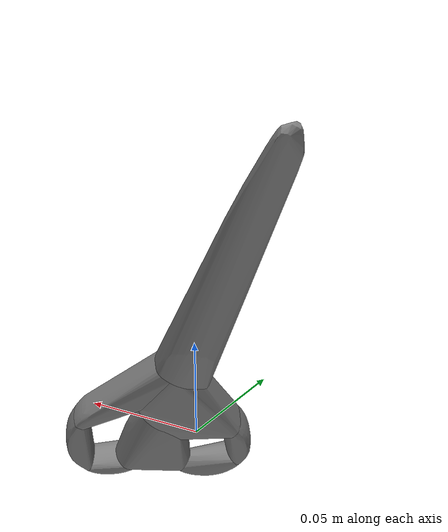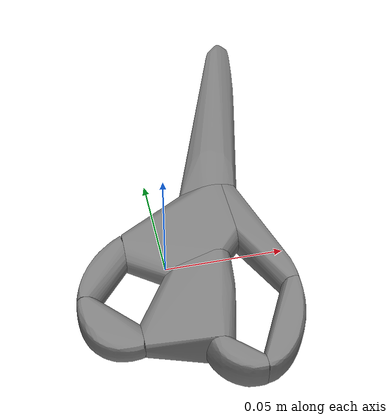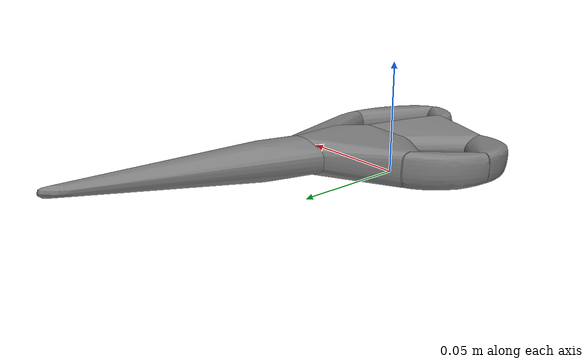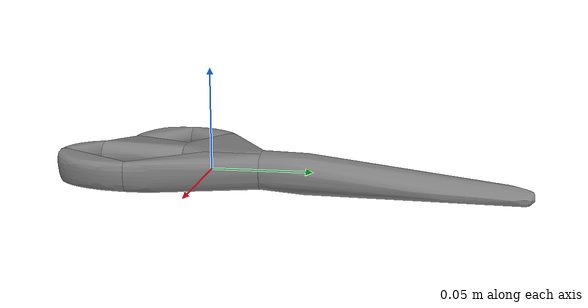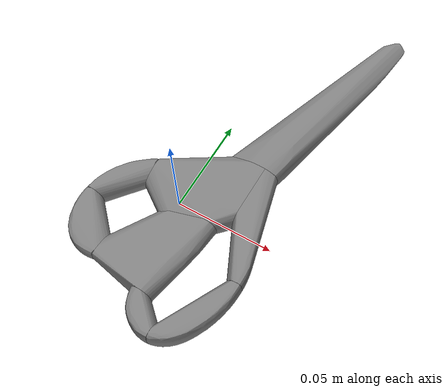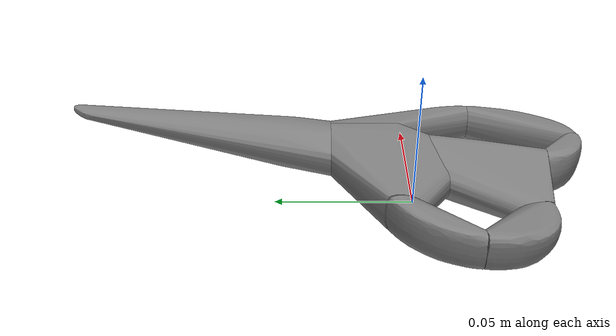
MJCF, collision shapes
<mujoco model="ycb_037_scissors">
  <compiler meshdir="meshes" texturedir="meshes" angle="radian"/>
  <default>
    <default class="visual"><geom contype="0" conaffinity="0" group="2" density="0"/></default>
    <default class="collision"><geom group="3"/></default>
  </default>
  <asset>
    <texture name="ycb_037_scissors_tex" type="2d" file="ycb_037_scissors_texture.png"/>
    <material name="ycb_037_scissors_mat" texture="ycb_037_scissors_tex" specular="0.2" shininess="0.3"/>
    <mesh name="ycb_037_scissors_visual" file="ycb_037_scissors_visual.obj"/>
    <mesh name="ycb_037_scissors_hull0" file="ycb_037_scissors_hull0.obj"/>
    <mesh name="ycb_037_scissors_hull1" file="ycb_037_scissors_hull1.obj"/>
    <mesh name="ycb_037_scissors_hull2" file="ycb_037_scissors_hull2.obj"/>
    <mesh name="ycb_037_scissors_hull3" file="ycb_037_scissors_hull3.obj"/>
    <mesh name="ycb_037_scissors_hull4" file="ycb_037_scissors_hull4.obj"/>
    <mesh name="ycb_037_scissors_hull5" file="ycb_037_scissors_hull5.obj"/>
    <mesh name="ycb_037_scissors_hull6" file="ycb_037_scissors_hull6.obj"/>
    <mesh name="ycb_037_scissors_hull7" file="ycb_037_scissors_hull7.obj"/>
  </asset>
  <worldbody>
    <body name="object" pos="0 0 0">
      <freejoint name="object_free"/>
      <geom type="mesh" mesh="ycb_037_scissors_visual" material="ycb_037_scissors_mat" class="visual"/>
      <geom type="mesh" mesh="ycb_037_scissors_hull0" class="collision"/>
      <geom type="mesh" mesh="ycb_037_scissors_hull1" class="collision"/>
      <geom type="mesh" mesh="ycb_037_scissors_hull2" class="collision"/>
      <geom type="mesh" mesh="ycb_037_scissors_hull3" class="collision"/>
      <geom type="mesh" mesh="ycb_037_scissors_hull4" class="collision"/>
      <geom type="mesh" mesh="ycb_037_scissors_hull5" class="collision"/>
      <geom type="mesh" mesh="ycb_037_scissors_hull6" class="collision"/>
      <geom type="mesh" mesh="ycb_037_scissors_hull7" class="collision"/>
    </body>
  </worldbody>
</mujoco>
